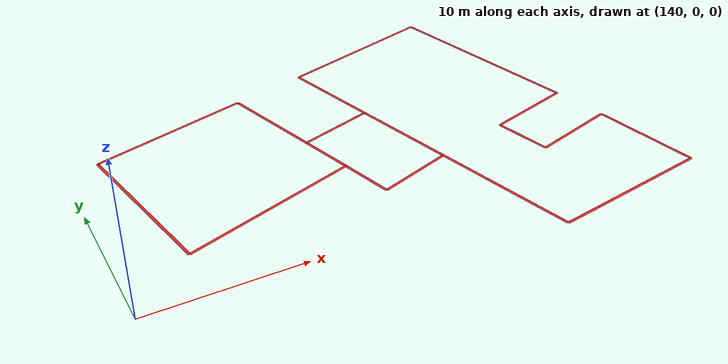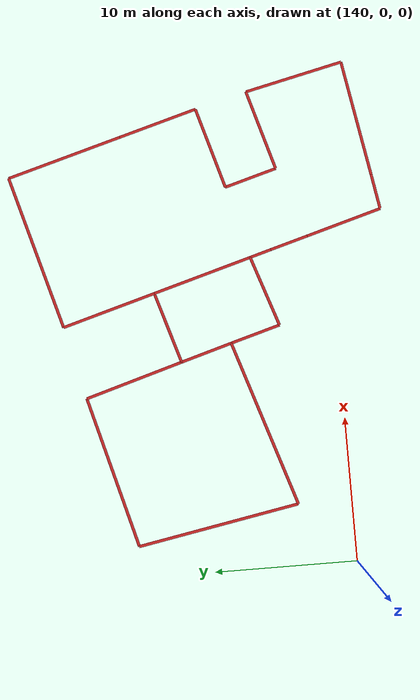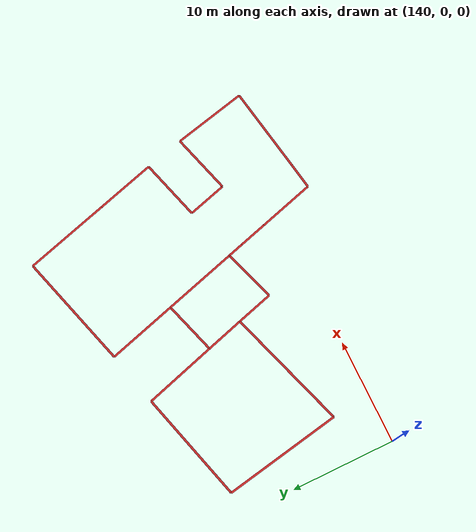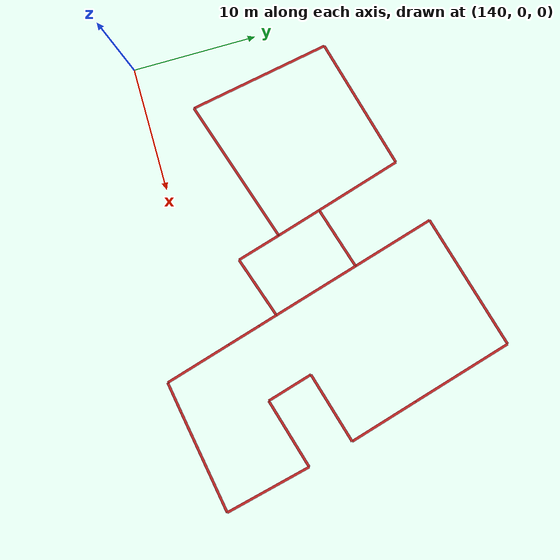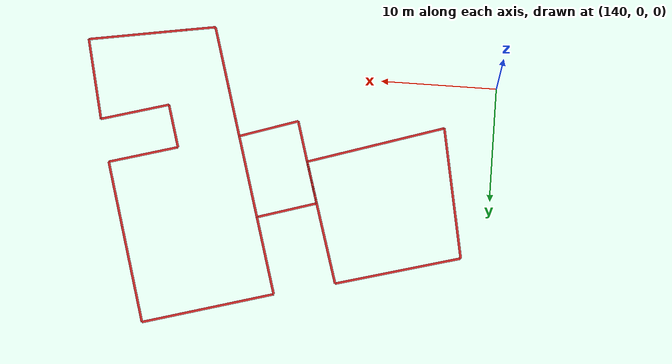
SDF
<sdf version="1.4">
 <world name="default">
  <include><uri>model://sun</uri></include>
  <model name="office_building_179437793">
   <static>true</static>
   <pose>158.224829535 9.02316383722 0.0 0 0 0</pose>
   <link name="office_building_179437793_0">
    <collision name="office_building_179437793_0">
     <geometry><box><size>7.33286384048 0.2 0</size></box></geometry>
    </collision>
    <visual name="office_building_179437793_0">
     <geometry><box><size>7.33286384048 0.2 0</size></box></geometry>
     <material>
      <script><uri>file://media/materials/scripts/gazebo.material</uri><name>Gazebo/Red</name></script>
     </material>
    </visual>
    <pose>2.67423844313 0.234239871703 0 0 0 1.85356391134</pose>
   </link>
   <link name="office_building_179437793_1">
    <collision name="office_building_179437793_1">
     <geometry><box><size>5.26936490319 0.2 0</size></box></geometry>
    </collision>
    <visual name="office_building_179437793_1">
     <geometry><box><size>5.26936490319 0.2 0</size></box></geometry>
     <material>
      <script><uri>file://media/materials/scripts/gazebo.material</uri><name>Gazebo/Red</name></script>
     </material>
    </visual>
    <pose>1.20089883508 -4.12914462691 0 0 0 0.325512958923</pose>
   </link>
   <link name="office_building_179437793_2">
    <collision name="office_building_179437793_2">
     <geometry><box><size>3.68020882226 0.2 0</size></box></geometry>
    </collision>
    <visual name="office_building_179437793_2">
     <geometry><box><size>3.68020882226 0.2 0</size></box></geometry>
     <material>
      <script><uri>file://media/materials/scripts/gazebo.material</uri><name>Gazebo/Red</name></script>
     </material>
    </visual>
    <pose>-1.80692278409 -3.20411732647 0 0 0 -1.28911562692</pose>
   </link>
   <link name="office_building_179437793_3">
    <collision name="office_building_179437793_3">
     <geometry><box><size>3.77527745149 0.2 0</size></box></geometry>
    </collision>
    <visual name="office_building_179437793_3">
     <geometry><box><size>3.77527745149 0.2 0</size></box></geometry>
     <material>
      <script><uri>file://media/materials/scripts/gazebo.material</uri><name>Gazebo/Red</name></script>
     </material>
    </visual>
    <pose>-2.85215001626 0.374078135266 0 0 0 -1.28413497828</pose>
   </link>
   <link name="office_building_179437793_4">
    <collision name="office_building_179437793_4">
     <geometry><box><size>5.27624895254 0.2 0</size></box></geometry>
    </collision>
    <visual name="office_building_179437793_4">
     <geometry><box><size>5.27624895254 0.2 0</size></box></geometry>
     <material>
      <script><uri>file://media/materials/scripts/gazebo.material</uri><name>Gazebo/Red</name></script>
     </material>
    </visual>
    <pose>-0.867315659032 2.96987745477 0 0 0 -2.83938185972</pose>
   </link>
  </model>
  <model name="office_building_179437782">
   <static>true</static>
   <pose>148.699137421 11.8341101067 0.0 0 0 0</pose>
   <link name="office_building_179437782_0">
    <collision name="office_building_179437782_0">
     <geometry><box><size>10.9883615022 0.2 0</size></box></geometry>
    </collision>
    <visual name="office_building_179437782_0">
     <geometry><box><size>10.9883615022 0.2 0</size></box></geometry>
     <material>
      <script><uri>file://media/materials/scripts/gazebo.material</uri><name>Gazebo/Red</name></script>
     </material>
    </visual>
    <pose>-1.2101607874 4.79842129598 0 0 0 -2.8700626041</pose>
   </link>
   <link name="office_building_179437782_1">
    <collision name="office_building_179437782_1">
     <geometry><box><size>7.19843461582 0.2 0</size></box></geometry>
    </collision>
    <visual name="office_building_179437782_1">
     <geometry><box><size>7.19843461582 0.2 0</size></box></geometry>
     <material>
      <script><uri>file://media/materials/scripts/gazebo.material</uri><name>Gazebo/Red</name></script>
     </material>
    </visual>
    <pose>5.11126594748 2.82286713211 0 0 0 1.86060481471</pose>
   </link>
   <link name="office_building_179437782_2">
    <collision name="office_building_179437782_2">
     <geometry><box><size>3.77527745149 0.2 0</size></box></geometry>
    </collision>
    <visual name="office_building_179437782_2">
     <geometry><box><size>3.77527745149 0.2 0</size></box></geometry>
     <material>
      <script><uri>file://media/materials/scripts/gazebo.material</uri><name>Gazebo/Red</name></script>
     </material>
    </visual>
    <pose>6.67354209804 -2.43686813425 0 0 0 1.85745767531</pose>
   </link>
   <link name="office_building_179437782_3">
    <collision name="office_building_179437782_3">
     <geometry><box><size>12.2361612522 0.2 0</size></box></geometry>
    </collision>
    <visual name="office_building_179437782_3">
     <geometry><box><size>12.2361612522 0.2 0</size></box></geometry>
     <material>
      <script><uri>file://media/materials/scripts/gazebo.material</uri><name>Gazebo/Red</name></script>
     </material>
    </visual>
    <pose>1.39177790724 -6.14771760822 0 0 0 0.315817884752</pose>
   </link>
   <link name="office_building_179437782_4">
    <collision name="office_building_179437782_4">
     <geometry><box><size>11.5613294284 0.2 0</size></box></geometry>
    </collision>
    <visual name="office_building_179437782_4">
     <geometry><box><size>11.5613294284 0.2 0</size></box></geometry>
     <material>
      <script><uri>file://media/materials/scripts/gazebo.material</uri><name>Gazebo/Red</name></script>
     </material>
    </visual>
    <pose>-5.46338131064 -2.36155316173 0 0 0 -1.38996060637</pose>
   </link>
  </model>
  <model name="office_building_179437784">
   <static>true</static>
   <pose>166.964383974 7.88922124424 0.0 0 0 0</pose>
   <link name="office_building_179437784_0">
    <collision name="office_building_179437784_0">
     <geometry><box><size>8.51080549568 0.2 0</size></box></geometry>
    </collision>
    <visual name="office_building_179437784_0">
     <geometry><box><size>8.51080549568 0.2 0</size></box></geometry>
     <material>
      <script><uri>file://media/materials/scripts/gazebo.material</uri><name>Gazebo/Red</name></script>
     </material>
    </visual>
    <pose>3.20280547887 10.6327245232 0 0 0 1.85280374029</pose>
   </link>
   <link name="office_building_179437784_1">
    <collision name="office_building_179437784_1">
     <geometry><box><size>5.86152774246 0.2 0</size></box></geometry>
    </collision>
    <visual name="office_building_179437784_1">
     <geometry><box><size>5.86152774246 0.2 0</size></box></geometry>
     <material>
      <script><uri>file://media/materials/scripts/gazebo.material</uri><name>Gazebo/Red</name></script>
     </material>
    </visual>
    <pose>5.20429399163 3.73091099994 0 0 0 1.85340449629</pose>
   </link>
   <link name="office_building_179437784_2">
    <collision name="office_building_179437784_2">
     <geometry><box><size>6.10343036033 0.2 0</size></box></geometry>
    </collision>
    <visual name="office_building_179437784_2">
     <geometry><box><size>6.10343036033 0.2 0</size></box></geometry>
     <material>
      <script><uri>file://media/materials/scripts/gazebo.material</uri><name>Gazebo/Red</name></script>
     </material>
    </visual>
    <pose>3.09158303902 0.0630962472917 0 0 0 0.283394755275</pose>
   </link>
   <link name="office_building_179437784_3">
    <collision name="office_building_179437784_3">
     <geometry><box><size>3.87474743725 0.2 0</size></box></geometry>
    </collision>
    <visual name="office_building_179437784_3">
     <geometry><box><size>3.87474743725 0.2 0</size></box></geometry>
     <material>
      <script><uri>file://media/materials/scripts/gazebo.material</uri><name>Gazebo/Red</name></script>
     </material>
    </visual>
    <pose>0.700889040741 -2.65101469977 0 0 0 1.85288587675</pose>
   </link>
   <link name="office_building_179437784_4">
    <collision name="office_building_179437784_4">
     <geometry><box><size>6.01000301508 0.2 0</size></box></geometry>
    </collision>
    <visual name="office_building_179437784_4">
     <geometry><box><size>6.01000301508 0.2 0</size></box></geometry>
     <material>
      <script><uri>file://media/materials/scripts/gazebo.material</uri><name>Gazebo/Red</name></script>
     </material>
    </visual>
    <pose>4.12569162654 -3.67284472521 0 0 0 -2.85864068861</pose>
   </link>
   <link name="office_building_179437784_5">
    <collision name="office_building_179437784_5">
     <geometry><box><size>7.2548603409 0.2 0</size></box></geometry>
    </collision>
    <visual name="office_building_179437784_5">
     <geometry><box><size>7.2548603409 0.2 0</size></box></geometry>
     <material>
      <script><uri>file://media/materials/scripts/gazebo.material</uri><name>Gazebo/Red</name></script>
     </material>
    </visual>
    <pose>7.83960183358 -6.36544606229 0 0 0 1.80120084567</pose>
   </link>
   <link name="office_building_179437784_6">
    <collision name="office_building_179437784_6">
     <geometry><box><size>8.50587167097 0.2 0</size></box></geometry>
    </collision>
    <visual name="office_building_179437784_6">
     <geometry><box><size>8.50587167097 0.2 0</size></box></geometry>
     <material>
      <script><uri>file://media/materials/scripts/gazebo.material</uri><name>Gazebo/Red</name></script>
     </material>
    </visual>
    <pose>4.47595466479 -10.6140910959 0 0 0 0.169415844951</pose>
   </link>
   <link name="office_building_179437784_7">
    <collision name="office_building_179437784_7">
     <geometry><box><size>2.57030230152 0.2 0</size></box></geometry>
    </collision>
    <visual name="office_building_179437784_7">
     <geometry><box><size>2.57030230152 0.2 0</size></box></geometry>
     <material>
      <script><uri>file://media/materials/scripts/gazebo.material</uri><name>Gazebo/Red</name></script>
     </material>
    </visual>
    <pose>-0.983715726299 -11.5427010693 0 0 0 0.165353336159</pose>
   </link>
   <link name="office_building_179437784_8">
    <collision name="office_building_179437784_8">
     <geometry><box><size>5.61568479636 0.2 0</size></box></geometry>
    </collision>
    <visual name="office_building_179437784_8">
     <geometry><box><size>5.61568479636 0.2 0</size></box></geometry>
     <material>
      <script><uri>file://media/materials/scripts/gazebo.material</uri><name>Gazebo/Red</name></script>
     </material>
    </visual>
    <pose>-3.03526256512 -9.0580479966 0 0 0 -1.28784464005</pose>
   </link>
   <link name="office_building_179437784_9">
    <collision name="office_building_179437784_9">
     <geometry><box><size>2.79940714026 0.2 0</size></box></geometry>
    </collision>
    <visual name="office_building_179437784_9">
     <geometry><box><size>2.79940714026 0.2 0</size></box></geometry>
     <material>
      <script><uri>file://media/materials/scripts/gazebo.material</uri><name>Gazebo/Red</name></script>
     </material>
    </visual>
    <pose>-4.20836890906 -5.01734768722 0 0 0 -1.28903736933</pose>
   </link>
   <link name="office_building_179437784_10">
    <collision name="office_building_179437784_10">
     <geometry><box><size>1.5839240311 0.2 0</size></box></geometry>
    </collision>
    <visual name="office_building_179437784_10">
     <geometry><box><size>1.5839240311 0.2 0</size></box></geometry>
     <material>
      <script><uri>file://media/materials/scripts/gazebo.material</uri><name>Gazebo/Red</name></script>
     </material>
    </visual>
    <pose>-4.81993958398 -2.91274079393 0 0 0 -1.28616060516</pose>
   </link>
   <link name="office_building_179437784_11">
    <collision name="office_building_179437784_11">
     <geometry><box><size>7.33286384048 0.2 0</size></box></geometry>
    </collision>
    <visual name="office_building_179437784_11">
     <geometry><box><size>7.33286384048 0.2 0</size></box></geometry>
     <material>
      <script><uri>file://media/materials/scripts/gazebo.material</uri><name>Gazebo/Red</name></script>
     </material>
    </visual>
    <pose>-6.06531599573 1.36818246468 0 0 0 -1.28802874225</pose>
   </link>
   <link name="office_building_179437784_12">
    <collision name="office_building_179437784_12">
     <geometry><box><size>6.89935367682 0.2 0</size></box></geometry>
    </collision>
    <visual name="office_building_179437784_12">
     <geometry><box><size>6.89935367682 0.2 0</size></box></geometry>
     <material>
      <script><uri>file://media/materials/scripts/gazebo.material</uri><name>Gazebo/Red</name></script>
     </material>
    </visual>
    <pose>-8.05012945657 8.20188708608 0 0 0 -1.28823499699</pose>
   </link>
   <link name="office_building_179437784_13">
    <collision name="office_building_179437784_13">
     <geometry><box><size>11.4868081894 0.2 0</size></box></geometry>
    </collision>
    <visual name="office_building_179437784_13">
     <geometry><box><size>11.4868081894 0.2 0</size></box></geometry>
     <material>
      <script><uri>file://media/materials/scripts/gazebo.material</uri><name>Gazebo/Red</name></script>
     </material>
    </visual>
    <pose>-3.4966810313 13.1173992989 0 0 0 -2.85879935379</pose>
   </link>
  </model>
 </world>
</sdf>
